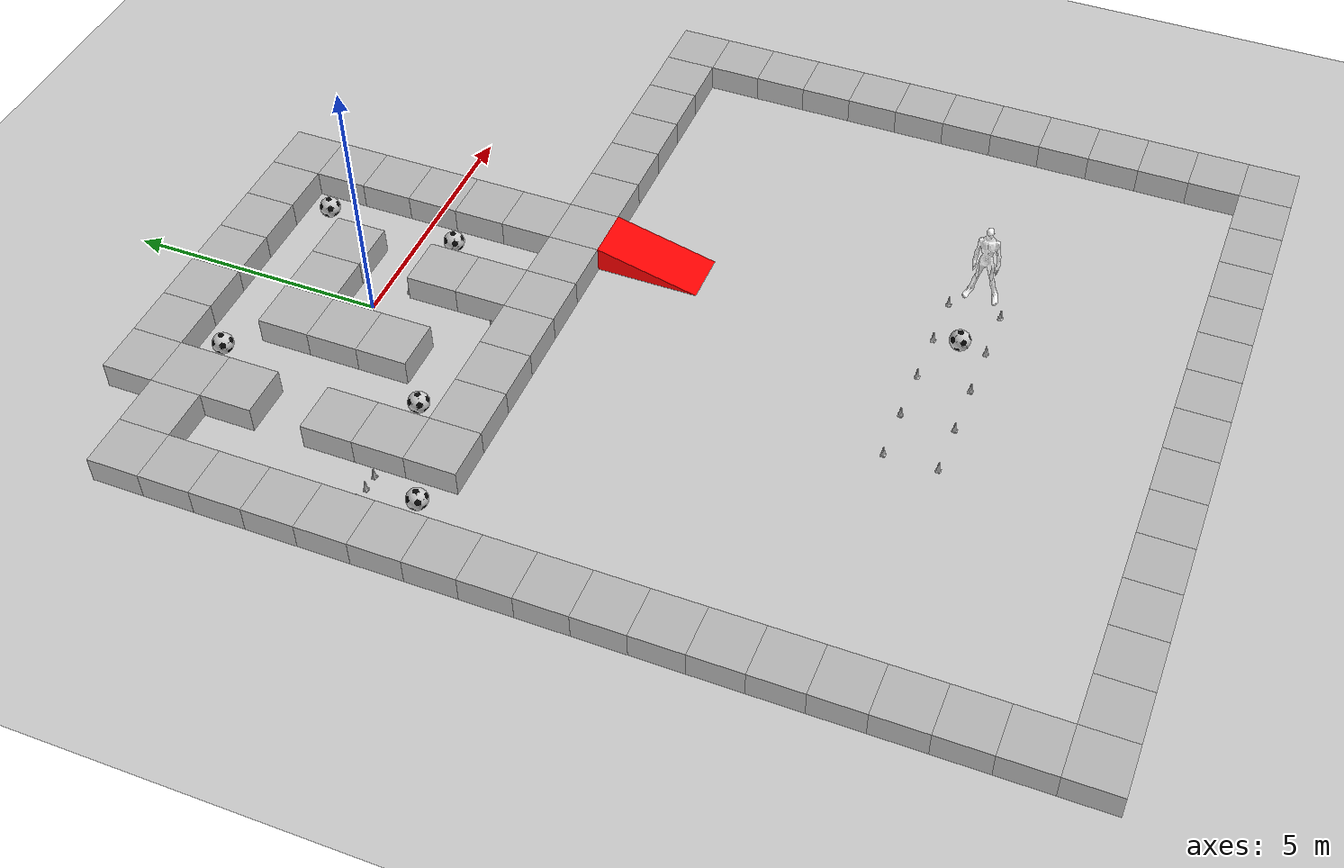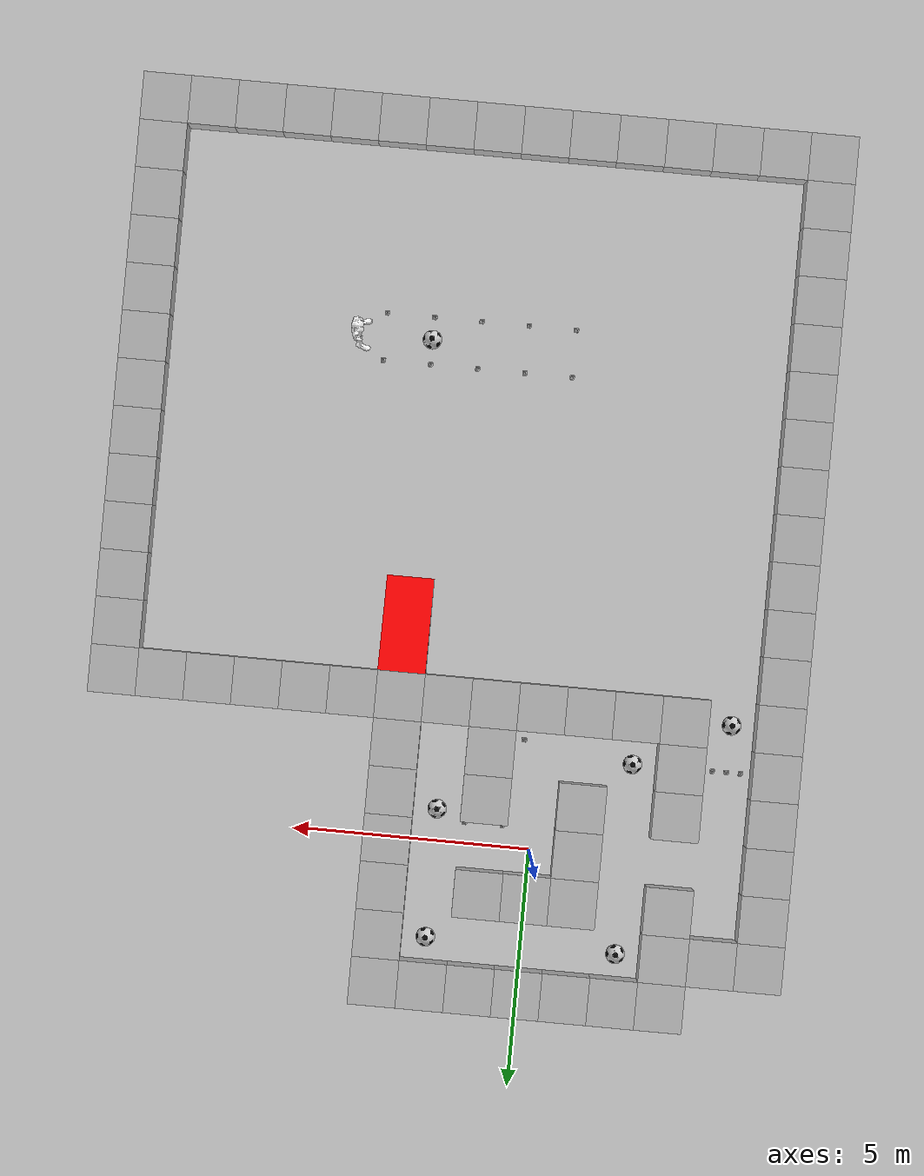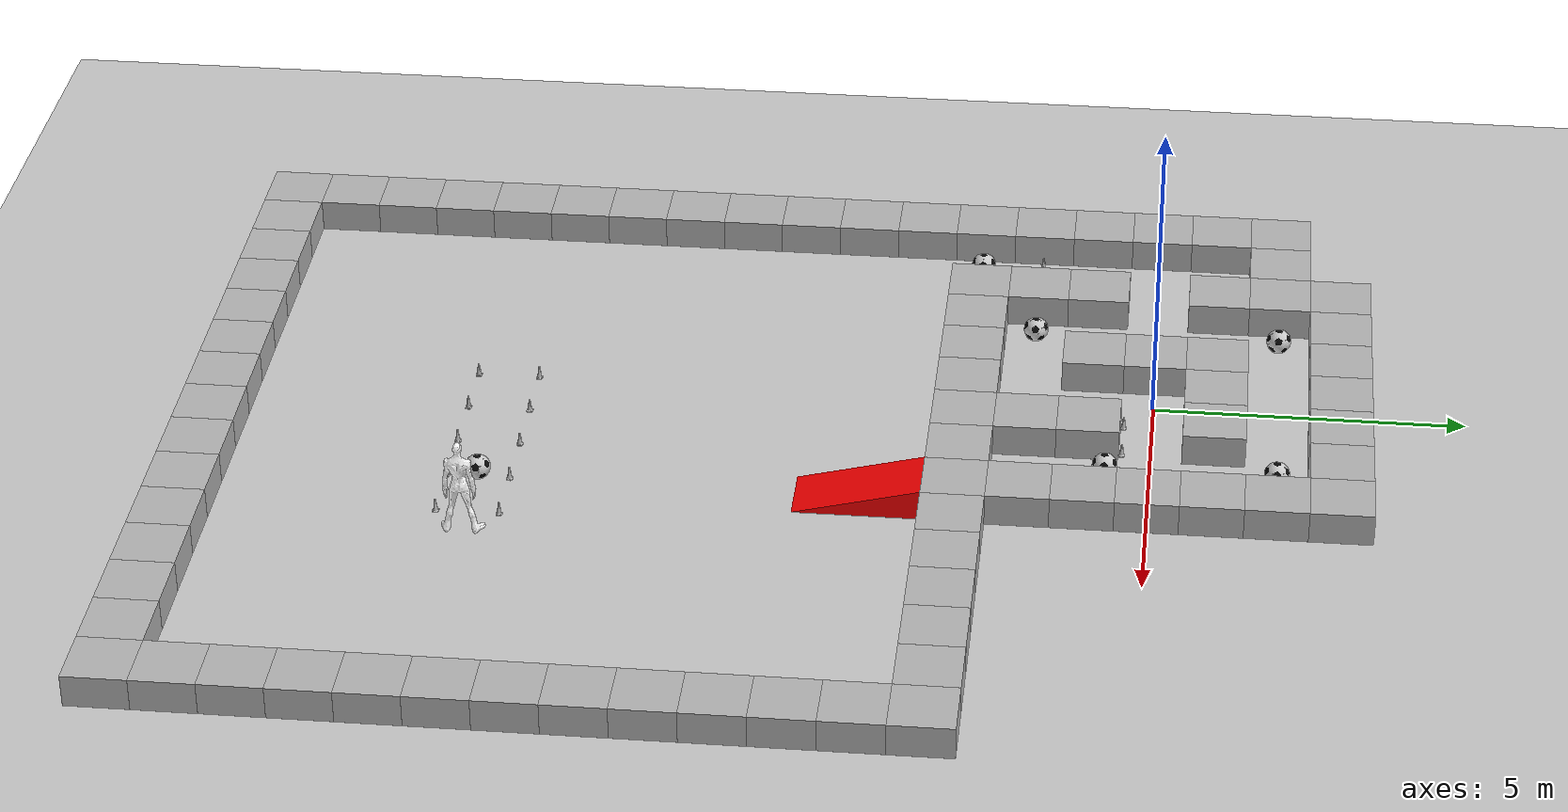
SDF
<?xml version="1.0"?>
<sdf version="1.11">
  <world name="demo_world">
    <physics name='1ms' type='ignored'>
      <max_step_size>0.001</max_step_size>
      <real_time_factor>1</real_time_factor>
      <real_time_update_rate>1000</real_time_update_rate>
    </physics>
    <plugin name='gz::sim::systems::Physics' filename='gz-sim-physics-system'/>

    <plugin
      filename="gz-sim-user-commands-system"
      name="gz::sim::systems::UserCommands">
    </plugin>

    <scene>
      <sky>
        <time>23.0</time>
        <clouds>
          <direction>0.5</direction>
          <mean_size>1.0</mean_size>
          <humidity>1.0</humidity>
          <speed>100.0</speed>
          <ambient>1.0 0 0 0</ambient>
        </clouds>
      </sky>
    </scene>

    <!--light-->
    <light type="directional" name="sun">
      <cast_shadows>true</cast_shadows>
      <visualize>false</visualize>
      <pose>10 -10 1 0 0 0</pose>
      <diffuse>0.8 0.8 0.8 1</diffuse>
      <specular>0.2 0.2 0.2 1</specular>
      <attenuation>
        <range>1000</range>
        <constant>0.9</constant>
        <linear>0.01</linear>
        <quadratic>0.001</quadratic>
      </attenuation>
      <direction>0.5 -1.5 -0.9</direction>
    </light>

	  <include>
      <uri>model://ground_plane</uri>
    </include>

    <model name="logo"><include><uri>model://phantom_cybernetics_logo</uri></include><pose>1.37 -0.5 0.2 1.57 0 3.14</pose></model>

    <model name="wall_0_0"><include><uri>model://my_brick_box</uri></include><pose>-3 -3 0 0 0 0</pose></model>
    <model name="wall_1_0"><include><uri>model://my_brick_box</uri></include><pose>-2 -3 0 0 0 0</pose></model> -->
    <model name="wall_2_0"><include><uri>model://my_brick_box</uri></include><pose>-1 -3 0 0 0 0</pose></model>
    <model name="wall_3_0"><include><uri>model://my_brick_box</uri></include><pose>0 -3 0 0 0 0</pose></model>
    <model name="wall_4_0"><include><uri>model://my_brick_box</uri></include><pose>1 -3 0 0 0 0</pose></model>

    <model name="wall_5_0"><include><uri>model://my_brick_box</uri></include><pose>2 -3 0 0 0 0</pose></model>

    <model name="wall_br_0_0"><include><uri>model://my_brick_box</uri></include><pose>4 -3 0 0 0 0</pose></model>
    <model name="wall_br_0_1"><include><uri>model://my_brick_box</uri></include><pose>5 -3 0 0 0 0</pose></model>
    <model name="wall_br_0_2"><include><uri>model://my_brick_box</uri></include><pose>6 -3 0 0 0 0</pose></model>
    <model name="wall_br_0_3"><include><uri>model://my_brick_box</uri></include><pose>7 -3 0 0 0 0</pose></model>
    <model name="wall_br_0_4"><include><uri>model://my_brick_box</uri></include><pose>8 -3 0 0 0 0</pose></model>
    <model name="wall_br_0_5"><include><uri>model://my_brick_box</uri></include><pose>9 -3 0 0 0 0</pose></model>

    <model name="wall_br_1_0"><include><uri>model://my_brick_box</uri></include><pose>9 -4 0 0 0 0</pose></model>
    <model name="wall_br_1_1"><include><uri>model://my_brick_box</uri></include><pose>9 -5 0 0 0 0</pose></model>
    <model name="wall_br_1_2"><include><uri>model://my_brick_box</uri></include><pose>9 -6 0 0 0 0</pose></model>
    <model name="wall_br_1_3"><include><uri>model://my_brick_box</uri></include><pose>9 -7 0 0 0 0</pose></model>
    <model name="wall_br_1_4"><include><uri>model://my_brick_box</uri></include><pose>9 -8 0 0 0 0</pose></model>
    <model name="wall_br_1_5"><include><uri>model://my_brick_box</uri></include><pose>9 -9 0 0 0 0</pose></model>

    <model name="wall_br_2_0"><include><uri>model://my_brick_box</uri></include><pose>9 -10 0 0 0 0</pose></model>
    <model name="wall_br_2_1"><include><uri>model://my_brick_box</uri></include><pose>9 -11 0 0 0 0</pose></model>
    <model name="wall_br_2_2"><include><uri>model://my_brick_box</uri></include><pose>9 -12 0 0 0 0</pose></model>
    <model name="wall_br_2_3"><include><uri>model://my_brick_box</uri></include><pose>9 -13 0 0 0 0</pose></model>
    <model name="wall_br_2_4"><include><uri>model://my_brick_box</uri></include><pose>9 -14 0 0 0 0</pose></model>
    <model name="wall_br_2_5"><include><uri>model://my_brick_box</uri></include><pose>9 -15 0 0 0 0</pose></model>

    <model name="wall_br_3_0"><include><uri>model://my_brick_box</uri></include><pose>4 -15 0 0 0 0</pose></model>
    <model name="wall_br_3_1"><include><uri>model://my_brick_box</uri></include><pose>5 -15 0 0 0 0</pose></model>
    <model name="wall_br_3_2"><include><uri>model://my_brick_box</uri></include><pose>6 -15 0 0 0 0</pose></model>
    <model name="wall_br_3_3"><include><uri>model://my_brick_box</uri></include><pose>7 -15 0 0 0 0</pose></model>
    <model name="wall_br_3_4"><include><uri>model://my_brick_box</uri></include><pose>8 -15 0 0 0 0</pose></model>
    <model name="wall_br_3_5"><include><uri>model://my_brick_box</uri></include><pose>9 -15 0 0 0 0</pose></model>

    <model name="wall_br_3_6"><include><uri>model://my_brick_box</uri></include><pose>3 -15 0 0 0 0</pose></model>
    <model name="wall_br_3_7"><include><uri>model://my_brick_box</uri></include><pose>2 -15 0 0 0 0</pose></model>
    <model name="wall_br_3_8"><include><uri>model://my_brick_box</uri></include><pose>1 -15 0 0 0 0</pose></model>
    <model name="wall_br_3_9"><include><uri>model://my_brick_box</uri></include><pose>0 -15 0 0 0 0</pose></model>
    <model name="wall_br_3_10"><include><uri>model://my_brick_box</uri></include><pose>-1 -15 0 0 0 0</pose></model>
    <model name="wall_br_3_11"><include><uri>model://my_brick_box</uri></include><pose>-2 -15 0 0 0 0</pose></model>
    <model name="wall_br_3_12"><include><uri>model://my_brick_box</uri></include><pose>-3 -15 0 0 0 0</pose></model>
    <model name="wall_br_3_13"><include><uri>model://my_brick_box</uri></include><pose>-4 -15 0 0 0 0</pose></model>

    <model name="wall_br_4_0"><include><uri>model://my_brick_box</uri></include><pose>-5 -10 0 0 0 0</pose></model>
    <model name="wall_br_4_1"><include><uri>model://my_brick_box</uri></include><pose>-5 -11 0 0 0 0</pose></model>
    <model name="wall_br_4_2"><include><uri>model://my_brick_box</uri></include><pose>-5 -12 0 0 0 0</pose></model>
    <model name="wall_br_4_3"><include><uri>model://my_brick_box</uri></include><pose>-5 -13 0 0 0 0</pose></model>
    <model name="wall_br_4_4"><include><uri>model://my_brick_box</uri></include><pose>-5 -14 0 0 0 0</pose></model>
    <model name="wall_br_4_5"><include><uri>model://my_brick_box</uri></include><pose>-5 -15 0 0 0 0</pose></model>

    <model name="wall_br_4_6"><include><uri>model://my_brick_box</uri></include><pose>-5 -9 0 0 0 0</pose></model>
    <model name="wall_br_4_7"><include><uri>model://my_brick_box</uri></include><pose>-5 -8 0 0 0 0</pose></model>
    <model name="wall_br_4_8"><include><uri>model://my_brick_box</uri></include><pose>-5 -7 0 0 0 0</pose></model>
    <model name="wall_br_4_9"><include><uri>model://my_brick_box</uri></include><pose>-5 -6 0 0 0 0</pose></model>
    <model name="wall_br_4_10"><include><uri>model://my_brick_box</uri></include><pose>-5 -5 0 0 0 0</pose></model>
    <model name="wall_br_4_11"><include><uri>model://my_brick_box</uri></include><pose>-5 -4 0 0 0 0</pose></model>

    <model name="wall_6_0"><include><uri>model://my_brick_box</uri></include><pose>3 -3 0 0 0 0</pose></model>
    <model name="wall_0_12"><include><uri>model://my_brick_box</uri></include><pose>-3 -2 0 0 0 0</pose></model> -->
    <model name="wall_0_1"><include><uri>model://my_brick_box</uri></include><pose>-5 -2 0 0 0 0</pose></model>
    <model name="wall_0_7"><include><uri>model://my_brick_box</uri></include><pose>-5 -3 0 0 0 0</pose></model>
    <model name="wall_0_8"><include><uri>model://my_brick_box</uri></include><pose>-5 -1 0 0 0 0</pose></model>
    <model name="wall_0_9"><include><uri>model://my_brick_box</uri></include><pose>-5 0 0 0 0 0</pose></model>
    <model name="wall_0_10"><include><uri>model://my_brick_box</uri></include><pose>-5 1 0 0 0 0</pose></model>
    <model name="wall_0_11"><include><uri>model://my_brick_box</uri></include><pose>-5 2 0 0 0 0</pose></model>
    <model name="wall_0_13"><include><uri>model://my_brick_box</uri></include><pose>-4 2 0 0 0 0</pose></model>

    <model name="wall_4_1"><include><uri>model://my_brick_box</uri></include><pose>1 -2 0 0 0 0</pose></model>
    <model name="wall_6_1"><include><uri>model://my_brick_box</uri></include><pose>3 -2 0 0 0 0</pose></model>
    <model name="wall_0_2"><include><uri>model://my_brick_box</uri></include><pose>-3 -1 0 0 0 0</pose></model>
    <model name="wall_2_2"><include><uri>model://my_brick_box</uri></include><pose>-1 -1 0 0 0 0</pose></model>
    <model name="wall_4_2"><include><uri>model://my_brick_box</uri></include><pose>1 -1 0 0 0 0</pose></model>
    <model name="wall_6_2"><include><uri>model://my_brick_box</uri></include><pose>3 -1 0 0 0 0</pose></model>
    <model name="wall_2_3"><include><uri>model://my_brick_box</uri></include><pose>-1 0 0 0 0 0</pose></model>
    <model name="wall_6_3"><include><uri>model://my_brick_box</uri></include><pose>3 0 0 0 0 0</pose></model>
    <model name="wall_0_4"><include><uri>model://my_brick_box</uri></include><pose>-3 1 0 0 0 0</pose></model>
    <model name="wall_2_4"><include><uri>model://my_brick_box</uri></include><pose>-1 1 0 0 0 0</pose></model>
    <model name="wall_3_4"><include><uri>model://my_brick_box</uri></include><pose>0 1 0 0 0 0</pose></model>
    <model name="wall_4_4"><include><uri>model://my_brick_box</uri></include><pose>1 1 0 0 0 0</pose></model>
    <model name="wall_6_4"><include><uri>model://my_brick_box</uri></include><pose>3 1 0 0 0 0</pose></model>
    <model name="wall_0_5"><include><uri>model://my_brick_box</uri></include><pose>-3 2 0 0 0 0</pose></model>
    <model name="wall_6_5"><include><uri>model://my_brick_box</uri></include><pose>3 2 0 0 0 0</pose></model>
    <model name="wall_0_6"><include><uri>model://my_brick_box</uri></include><pose>-3 3 0 0 0 0</pose></model>
    <model name="wall_1_6"><include><uri>model://my_brick_box</uri></include><pose>-2 3 0 0 0 0</pose></model>
    <model name="wall_2_6"><include><uri>model://my_brick_box</uri></include><pose>-1 3 0 0 0 0</pose></model>
    <model name="wall_3_6"><include><uri>model://my_brick_box</uri></include><pose>0 3 0 0 0 0</pose></model>
    <model name="wall_4_6"><include><uri>model://my_brick_box</uri></include><pose>1 3 0 0 0 0</pose></model>
    <model name="wall_5_6"><include><uri>model://my_brick_box</uri></include><pose>2 3 0 0 0 0</pose></model>
    <model name="wall_6_6"><include><uri>model://my_brick_box</uri></include><pose>3 3 0 0 0 0</pose></model>

    <!-- FOOTBALLS -->
    <model name="ball_0"><include><uri>model://robocup_3Dsim_ball</uri></include><pose>-2 2 0 0 0 0</pose></model>
    <model name="ball_1"><include><uri>model://robocup_3Dsim_ball</uri></include><pose>2 -.7 0 0 0 0</pose></model>
    <model name="ball_2"><include><uri>model://robocup_3Dsim_ball</uri></include><pose>2 2 0 0 0 0</pose></model>
    <model name="ball_3"><include><uri>model://robocup_3Dsim_ball</uri></include><pose>-2 -2 0 0 0 0</pose></model>
    <model name="ball_4"><include><uri>model://robocup_3Dsim_ball</uri></include><pose>-4 -3 0 0 0 0</pose></model>

    <!-- Cones in the big room -->
    <model name="cone_0"><include><uri>model://construction_cone</uri></include><pose>0 -10 0 0 0 0</pose></model>
    <model name="cone_1"><include><uri>model://construction_cone</uri></include><pose>1 -10 0 0 0 0</pose></model>
    <model name="cone_2"><include><uri>model://construction_cone</uri></include><pose>2 -10 0 0 0 0</pose></model>
    <model name="cone_3"><include><uri>model://construction_cone</uri></include><pose>3 -10 0 0 0 0</pose></model>
    <model name="cone_4"><include><uri>model://construction_cone</uri></include><pose>4 -10 0 0 0 0</pose></model>
    <model name="cone_00"><include><uri>model://construction_cone</uri></include><pose>0 -11 0 0 0 0</pose></model>
    <model name="cone_11"><include><uri>model://construction_cone</uri></include><pose>1 -11 0 0 0 0</pose></model>
    <model name="cone_22"><include><uri>model://construction_cone</uri></include><pose>2 -11 0 0 0 0</pose></model>
    <model name="cone_33"><include><uri>model://construction_cone</uri></include><pose>3 -11 0 0 0 0</pose></model>
    <model name="cone_44"><include><uri>model://construction_cone</uri></include><pose>4 -11 0 0 0 0</pose></model>

    <!-- around phantom logo -->
    <model name="cone_5"><include><uri>model://construction_cone</uri></include><pose>1.4 -0.45 0 0 0 0</pose></model>
    <model name="cone_6"><include><uri>model://construction_cone</uri></include><pose>.6 -0.45 0 0 0 0</pose></model>

    <model name="cone_7"><include><uri>model://construction_cone</uri></include><pose>-4.3 -2 0 0 0 0</pose></model>
    <model name="cone_8"><include><uri>model://construction_cone</uri></include><pose>-4 -2 0 0 0 0</pose></model>
    <model name="cone_9"><include><uri>model://construction_cone</uri></include><pose>-3.7 -2 0 0 0 0</pose></model>

    <model name="cone_10"><include><uri>model://construction_cone</uri></include><pose>0.3 -2.3 0 0 0 0</pose></model>

    <model name="slope_0"><include><uri>model://slope</uri></include><pose>3 -4.5 0 0 0 0</pose></model>
    <model name="ball_h"><include><uri>model://robocup_3Dsim_ball</uri></include><pose>3 -10.5 0 0 0 0</pose></model>

    <model name="human"><include><uri>model://human</uri></include><pose>4.5 -10.5 0 0 0 0</pose></model>

  </world>
</sdf>

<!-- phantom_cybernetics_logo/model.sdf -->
<sdf version="1.6">
    <model name="phantom_cybernetics_logo">
        <static>true</static>
        <link name="link">
            <visual name="visual">
                <cast_shadows>true</cast_shadows>
                <geometry>
                    <mesh>
                        <uri>model://phantom_cybernetics_logo/meshes/phantom-cybernetics-logo.dae</uri>
                        <scale>1.6 1.6 1.6</scale>
                    </mesh>
                </geometry>
                <plugin filename="gz-sim-label-system" name="gz::sim::systems::Label">
                    <label>2</label>
                </plugin>
            </visual>
        </link>
    </model>
</sdf>

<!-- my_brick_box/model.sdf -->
<sdf version="1.5">
  <model name="my_brick_box">
    <static>true</static>
    <link name="chassis">
      <pose>0 0 0 0 0 0</pose>
      <collision name="collision">
        <geometry>
          <box>
            <size>1.0 1.0 1.0</size>
          </box>
        </geometry>
      </collision>
      <visual name="visual">
        <geometry>
          <mesh>
            <uri>model://my_brick_box/meshes/simple_box.dae</uri>
            <scale>1.0 1.0 1.0</scale>
          </mesh>
        </geometry>
      </visual>
    </link>
  </model>
</sdf>

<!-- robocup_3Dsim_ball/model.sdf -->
<sdf version="1.6">
  <model name="soccer_ball">
    <static>false</static>
    <link name="soccer_ball_link">
      <!-- Raise ball center by new radius (0.2) so it rests on the ground -->
      <pose>0 0 0.2 0 0 0</pose>
      <inertial>
        <mass>0.026</mass>
        <!-- Adjust inertia: I = 2/5 * m * r^2 = 2/5 * 0.026 * 0.2^2 -->
        <inertia>
          <ixx>4.16e-4</ixx>
          <iyy>4.16e-4</iyy>
          <izz>4.16e-4</izz>
          <ixy>0</ixy>
          <ixz>0</ixz>
          <iyz>0</iyz>
        </inertia>
      </inertial>
      <collision name="collision">
        <geometry>
          <sphere>
            <radius>0.2</radius>
          </sphere>
        </geometry>
        <surface>
          <friction>
            <ode>
              <!-- Setting friction to moderate values; adjust as needed -->
              <mu>5.0</mu>
              <mu2>5.0</mu2>
            </ode>
          </friction>
          <bounce>
            <restitution_coefficient>1.0</restitution_coefficient>
            <threshold>0.01</threshold>
          </bounce>
        </surface>
      </collision>
      <visual name="visual">
        <geometry>
          <mesh>
            <scale>0.582 0.582 0.582</scale> <!-- 0.15 diameter to 0.2 -->
            <uri>model://robocup_3Dsim_ball/meshes/football2.dae</uri>
          </mesh>
        </geometry>
        <plugin filename="gz-sim-label-system" name="gz::sim::systems::Label">
          <label>0</label>
        </plugin>
      </visual>
      <velocity_decay>
        <!-- Nonzero values here will help slow the ball's motion -->
        <linear>0.5</linear>
        <angular>0.5</angular>
      </velocity_decay>
    </link>
  </model>
</sdf>

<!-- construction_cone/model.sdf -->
<sdf version="1.5">
  <model name="construction_cone">
    <link name="link">
      <collision name="collision">
        <geometry>
          <mesh>
            <scale>2 2 2</scale>
            <uri>model://construction_cone/meshes/construction_cone.dae</uri>
          </mesh>
        </geometry>
      </collision>
      <inertial>
        <mass>0.026</mass>
        <inertia>
          <ixx>4.16e-4</ixx>
          <iyy>4.16e-4</iyy>
          <izz>4.16e-4</izz>
          <ixy>0</ixy>
          <ixz>0</ixz>
          <iyz>0</iyz>
        </inertia>
      </inertial>
      <velocity_decay>
        <!-- Nonzero values here will help slow the motion -->
        <linear>0.5</linear>
        <angular>0.5</angular>
      </velocity_decay>
      <visual name="visual">
        <geometry>
          <mesh>
            <scale>2 2 2</scale>
            <uri>model://construction_cone/meshes/construction_cone.dae</uri>
          </mesh>
        </geometry>
        <plugin filename="gz-sim-label-system" name="gz::sim::systems::Label">
          <label>1</label>
        </plugin>
      </visual>
    </link>
  </model>
</sdf>

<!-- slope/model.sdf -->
<sdf version="1.6">
  <model name="slope">
    <static>true</static>
    <link name="slope">
      <pose>0 0 0 0 0 0</pose>
      <collision name="collision">
        <geometry>
          <mesh>
            <uri>model://slope/meshes/slope.dae</uri>
            <scale>.5 1 .25</scale>
          </mesh>
        </geometry>
        <surface>
            <friction>
                <ode>
                    <mu>1</mu>
                    <mu2>1</mu2>
                    <slip1>1</slip1>
                    <slip2>1</slip2>
                </ode>
            </friction>
        </surface>
      </collision>
      <visual name="visual">
        <geometry>
          <mesh>
            <uri>model://slope/meshes/slope.dae</uri>
            <scale>.5 1 .25</scale>
          </mesh>
        </geometry>
        <cast_shadows>true</cast_shadows>
        <material name="slope_mat">
          <diffuse>1 0 0 1</diffuse>
          <ambient>1 1 1 1</ambient>
          <emmisive>1 1 1 1</emmisive>
          <specular>1 1 0 1</specular>
          <shininess>1</shininess>
          <pbr>
            <metal>
              <metalness>.2</metalness>
            </metal>
          </pbr>
        </material>
      </visual>
    </link>
  </model>
</sdf>

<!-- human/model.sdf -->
<sdf version="1.6">
  <model name="human">
    <static>true</static>
    <link name="human">
      <pose>0 0 0 0 0 0</pose>
      <collision name="collision">
        <geometry>
          <mesh>
            <uri>model://human/meshes/Human.stl</uri>
            <scale>.3 .3 .3</scale>
          </mesh>
        </geometry>
      </collision>
      <visual name="visual">
        <pose>0 0 1.2 0 0 -1.57</pose>
        <cast_shadows>true</cast_shadows>
        <geometry>
          <mesh>
            <uri>model://human/meshes/Human.stl</uri>
            <scale>.3 .3 .3</scale>
          </mesh>
        </geometry>
        <material name="human_mat">
          <diffuse>1 1 1 1</diffuse>
          <ambient>1 1 1 1</ambient>
          <emmisive>1 1 1 1</emmisive>
          <specular>1 1 0 1</specular>
          <shininess>1</shininess>
          <pbr>
            <metal>
              <metalness>.2</metalness>
            </metal>
          </pbr>
        </material>
        <plugin filename="gz-sim-label-system" name="gz::sim::systems::Label">
          <label>3</label>
        </plugin>
      </visual>
    </link>
  </model>
</sdf>
